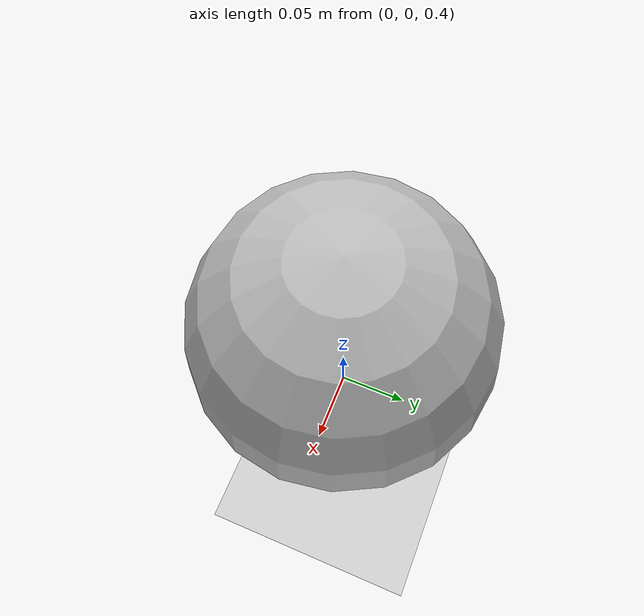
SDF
<?xml version="1.0"?>
<sdf version="1.6">
  <world name="default">

    <include>
      <uri>model://ground_plane</uri>
    </include>

    <include>
      <uri>model://sun</uri>
    </include>

    <model name="box">
      <pose>0 0 0.5 0 0 0</pose>
      <link name="link0">
        <gravity>0</gravity>
        <collision name="collision">
          <geometry>
            <sphere>
              <radius>0.1</radius>
            </sphere>
          </geometry>
        </collision>
        <visual name="visual">
          <geometry>
            <sphere>
              <radius>0.1</radius>
            </sphere>
          </geometry>
        </visual>
      </link>

      <plugin name='planar_move' filename='libgazebo_ros_planar_move1.so'>
        <ros>
          <namespace>/cable</namespace>
          <remapping>cmd_vel:=cmd_demo</remapping>
          <remapping>cable_pub_testarray:=cable_pub_testarray</remapping>
          <remapping>odom:=odom_demo</remapping>
        </ros>

        <update_rate>100</update_rate>
        <publish_rate>10</publish_rate>
        <pos_seq>2</pos_seq>
        <!-- output -->
        <publish_odom>true</publish_odom>
        <publish_odom_tf>true</publish_odom_tf>

        <odometry_frame>odom_demo</odometry_frame>
        <robot_base_frame>link0</robot_base_frame>

        <covariance_x>0.0001</covariance_x>
        <covariance_y>0.0001</covariance_y>
        <covariance_yaw>0.01</covariance_yaw>
      </plugin>
    </model>
    <model name="box1">
      <pose>0 0 0.5 0 0 0</pose>
      <link name="link0">
        <gravity>0</gravity>
        <collision name="collision">
          <geometry>
            <sphere>
              <radius>0.1</radius>
            </sphere>
          </geometry>
        </collision>
        <visual name="visual">
          <geometry>
            <sphere>
              <radius>0.1</radius>
            </sphere>
          </geometry>
        </visual>
      </link>

      <plugin name='planar_move' filename='libgazebo_ros_planar_move1.so'>
        <ros>
          <namespace>/cable</namespace>
          <remapping>cmd_vel:=cmd_demo</remapping>
          <remapping>cable_pub_testarray:=cable_pub_testarray</remapping>
          <remapping>odom:=odom_demo</remapping>
        </ros>

        <update_rate>100</update_rate>
        <publish_rate>10</publish_rate>
        <pos_seq>1</pos_seq>
        <!-- output -->
        <publish_odom>true</publish_odom>
        <publish_odom_tf>true</publish_odom_tf>

        <odometry_frame>odom_demo</odometry_frame>
        <robot_base_frame>link0</robot_base_frame>

        <covariance_x>0.0001</covariance_x>
        <covariance_y>0.0001</covariance_y>
        <covariance_yaw>0.01</covariance_yaw>
      </plugin>
    </model>
  </world>
</sdf>
